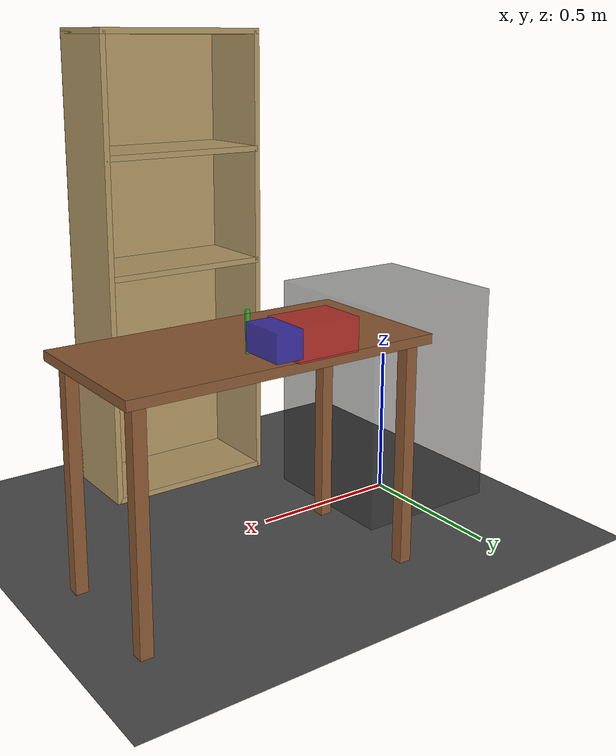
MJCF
<mujoco model="mlspaces-house">
  <compiler angle="radian"/>

  <option impratio="10" gravity="0 0 -9.8" integrator="implicitfast" cone="elliptic" jacobian="sparse" noslip_iterations="4">
    <flag energy="enable" multiccd="enable"/>
  </option>

  <visual>
    <global offwidth="1280" offheight="720"/>
    <quality shadowsize="16384"/>
    <headlight ambient="0.35 0.35 0.35"/>
    <map znear="0.001"/>
  </visual>

  <default>
    <default class="/">
      <default class="__VISUAL_MJT__">
        <geom contype="0" conaffinity="0"/>
      </default>
      <default class="__STRUCTURAL_MJT__">
        <geom contype="8" conaffinity="15" group="4" friction="0.9 0.9 0.001" solref="0.025" solimp="0.998 0.998" density="500"/>
        <default class="__STRUCTURAL_WALL_MJT__">
          <geom group="3"/>
        </default>
      </default>
      <default class="__DYNAMIC_MJT__">
        <geom conaffinity="15" group="4" friction="0.9 0.9 0.001" solref="0.025" solimp="0.998 0.998" density="500"/>
      </default>
      <default class="__ARTICULABLE_DYNAMIC_MJT__">
        <geom contype="0" conaffinity="7" group="4" friction="0.9 0.9 0.001" solref="0.025" solimp="0.998 0.998" density="500"/>
      </default>
    </default>
  </default>

  <worldbody>
    <geom name="ground" size="5 5 0.01" type="plane" contype="8" conaffinity="15" rgba="0.3 0.3 0.3 1"/>
    <body name="desk" pos="0.75 0.25 0">
      <geom name="desk_top" size="0.5 0.25 0.015" pos="0 0 0.72" type="box" contype="8" conaffinity="15" rgba="0.55 0.35 0.2 1"/>
      <geom name="desk_leg_fl" size="0.02 0.02 0.36" pos="-0.45 -0.2 0.36" type="box" contype="8" conaffinity="15" rgba="0.55 0.35 0.2 1"/>
      <geom name="desk_leg_fr" size="0.02 0.02 0.36" pos="0.45 -0.2 0.36" type="box" contype="8" conaffinity="15" rgba="0.55 0.35 0.2 1"/>
      <geom name="desk_leg_bl" size="0.02 0.02 0.36" pos="-0.45 0.2 0.36" type="box" contype="8" conaffinity="15" rgba="0.55 0.35 0.2 1"/>
      <geom name="desk_leg_br" size="0.02 0.02 0.36" pos="0.45 0.2 0.36" type="box" contype="8" conaffinity="15" rgba="0.55 0.35 0.2 1"/>
    </body>
    <body name="bookcase" pos="0.55 -0.55 0">
      <geom name="bc_back" size="0.3 0.01 0.8" pos="0 -0.14 0.8" type="box" contype="8" conaffinity="15" rgba="0.7 0.6 0.4 1"/>
      <geom name="bc_left" size="0.01 0.15 0.8" pos="-0.29 0 0.8" type="box" contype="8" conaffinity="15" rgba="0.7 0.6 0.4 1"/>
      <geom name="bc_right" size="0.01 0.15 0.8" pos="0.29 0 0.8" type="box" contype="8" conaffinity="15" rgba="0.7 0.6 0.4 1"/>
      <geom name="bc_bottom" size="0.29 0.15 0.01" pos="0 0 0.01" type="box" contype="8" conaffinity="15" rgba="0.7 0.6 0.4 1"/>
      <geom name="bc_shelf_0" size="0.29 0.15 0.01" pos="0 0 0.4" type="box" contype="8" conaffinity="15" rgba="0.7 0.6 0.4 1"/>
      <geom name="bc_shelf_1" size="0.29 0.15 0.01" pos="0 0 0.8" type="box" contype="8" conaffinity="15" rgba="0.7 0.6 0.4 1"/>
      <geom name="bc_shelf_2" size="0.29 0.15 0.01" pos="0 0 1.2" type="box" contype="8" conaffinity="15" rgba="0.7 0.6 0.4 1"/>
      <geom name="bc_top" size="0.3 0.15 0.01" pos="0 0 1.6" type="box" contype="8" conaffinity="15" rgba="0.7 0.6 0.4 1"/>
    </body>
    <body name="robot_base" pos="0 0 0.375">
      <geom name="robot_base_geom" size="0.25 0.25 0.375" type="box" contype="0" conaffinity="0" rgba="0.2 0.2 0.2 0.5"/>
    </body>
    <body name="Tissue_Box_1" pos="0.65 0.45 0.79" quat="0.707107 0.707107 0 0">
      <geom name="Tissue_Box_1_geom" size="0.1 0.05 0.075" type="box" contype="0" conaffinity="0" rgba="0.8 0.2 0.2 0.8"/>
    </body>
    <body name="Pencil_1" pos="0.8 0.35 0.77" quat="0.707107 0.707107 0 0">
      <geom name="Pencil_1_geom" size="0.005 0.09 0.005" type="box" contype="0" conaffinity="0" rgba="0.2 0.8 0.2 0.8"/>
    </body>
    <body name="Cup_5" pos="0.85 0.55 0.83" quat="0.707107 0.707107 0 0">
      <geom name="Cup_5_geom" size="0.04 0.04 0.07" type="box" contype="0" conaffinity="0" rgba="0.2 0.2 0.8 0.8"/>
    </body>
  </worldbody>
</mujoco>
